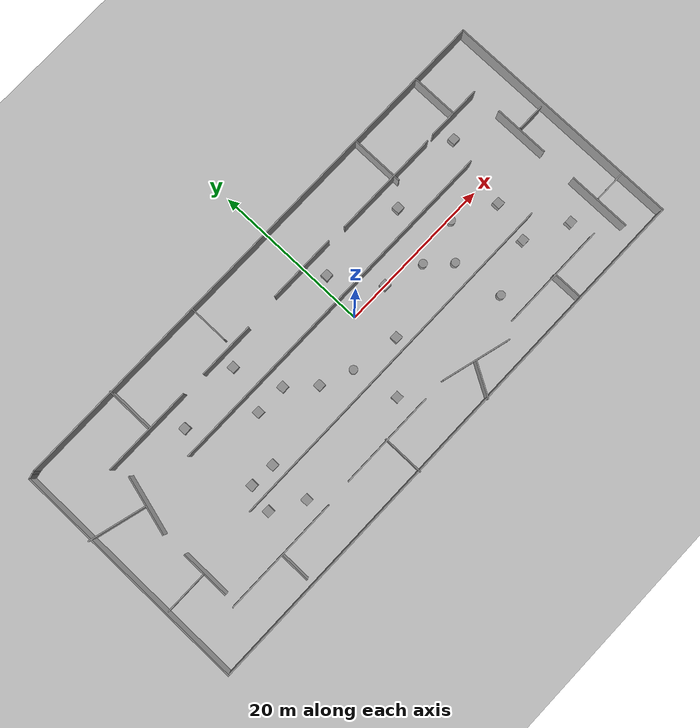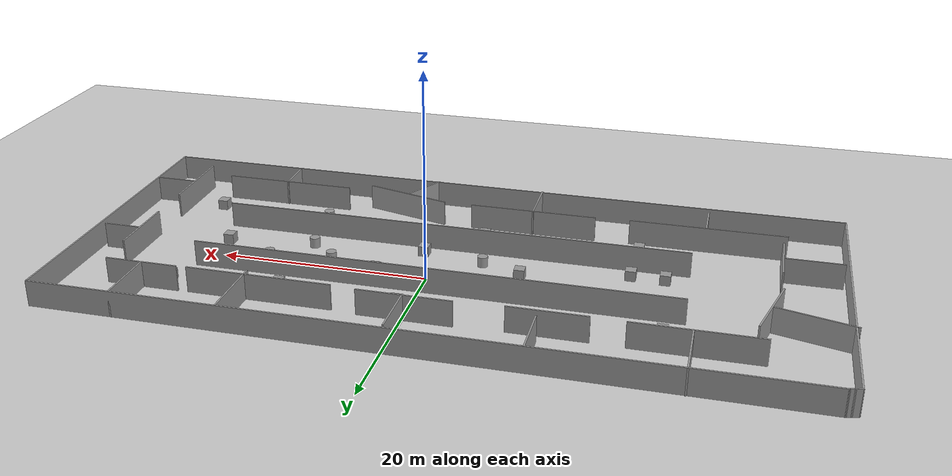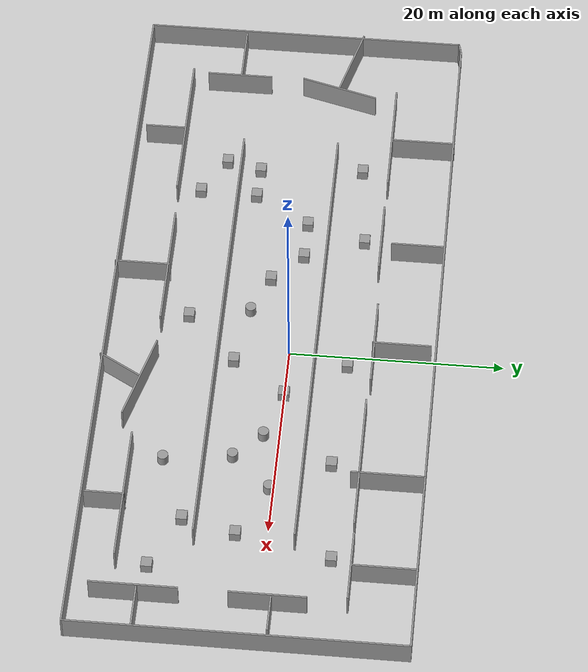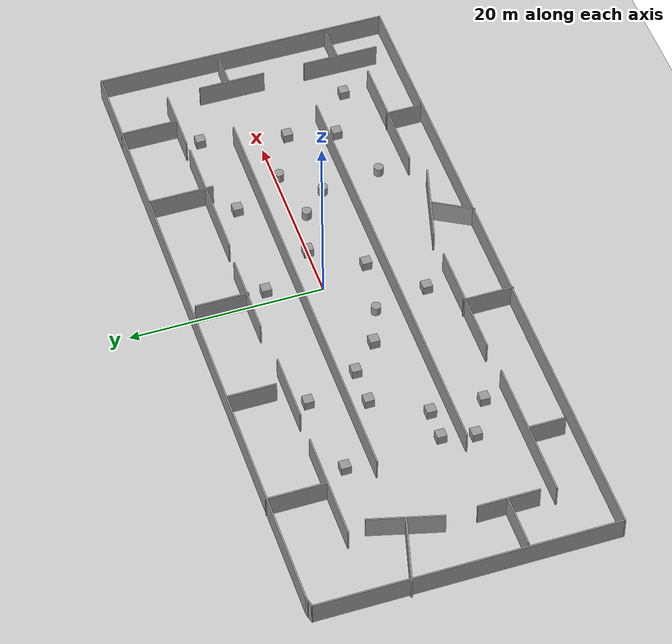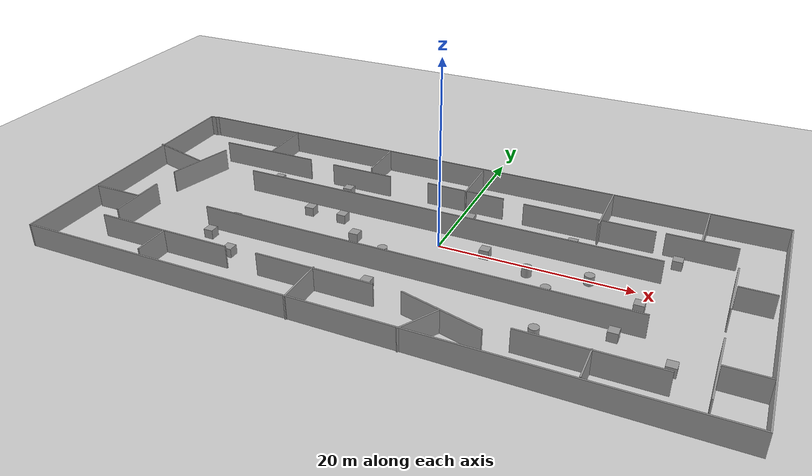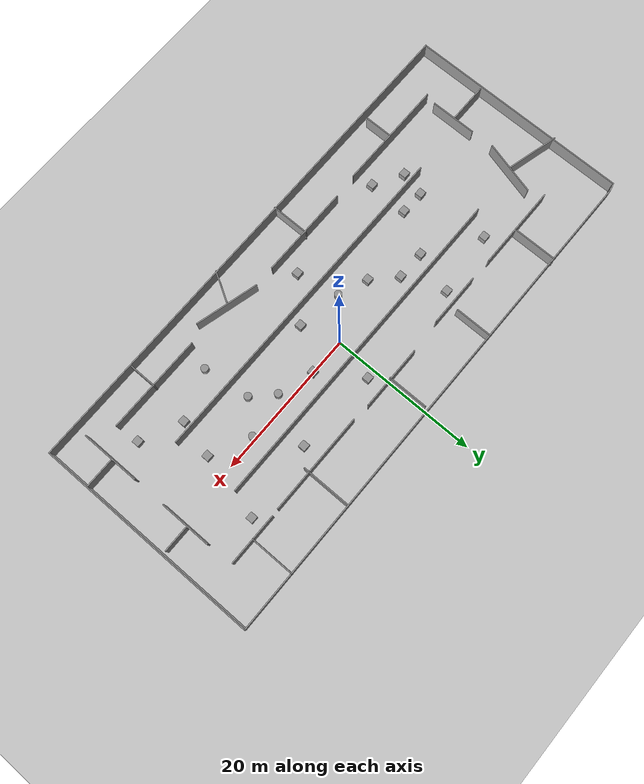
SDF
<sdf version="1.6">
 <world name="default">
  <light name="sun" type="directional">
   <pose>0 0 10 0 -0 0</pose>
   <diffuse>0.8 0.8 0.8 1</diffuse>
   <specular>0.2 0.2 0.2 1</specular>
   <attenuation>
    <range>1000</range>
    <constant>0.9</constant>
    <linear>0.01</linear>
    <quadratic>0.001</quadratic>
   </attenuation>
   <direction>-0.5 0.1 -0.9</direction>
  </light>
  <model name="ground_plane">
   <static>1</static>
   <link name="link">
    <collision name="collision">
     <geometry><plane><normal>0 0 1</normal><size>100 100</size></plane></geometry>
     <surface>
      <contact><collide_bitmask>65535</collide_bitmask></contact>
      <friction><ode><mu>100</mu><mu2>50</mu2></ode></friction>
     </surface>
    </collision>
    <visual name="visual">
     <cast_shadows>0</cast_shadows>
     <geometry><plane><normal>0 0 1</normal><size>100 100</size></plane></geometry>
     <material>
      <script><uri>file://media/materials/scripts/gazebo.material</uri><name>Gazebo/Grey</name></script>
     </material>
    </visual>
   </link>
  </model>
  <gravity>0 0 -9.8</gravity>
  <magnetic_field>6e-06 2.3e-05 -4.2e-05</magnetic_field>
  <atmosphere type="adiabatic"/>
  <physics name="default_physics" default="0" type="ode">
   <max_step_size>0.001</max_step_size>
   <real_time_factor>1</real_time_factor>
   <real_time_update_rate>1000</real_time_update_rate>
  </physics>
  <scene><ambient>0.4 0.4 0.4 1</ambient><background>0.7 0.7 0.7 1</background><shadows>1</shadows></scene>
  <audio><device>default</device></audio>
  <spherical_coordinates>
   <surface_model>EARTH_WGS84</surface_model>
   <latitude_deg>0</latitude_deg>
   <longitude_deg>0</longitude_deg>
   <elevation>0</elevation>
   <heading_deg>0</heading_deg>
  </spherical_coordinates>
  <model name="4">
   <pose>-2.66349 -1.69642 0 0 -0 0</pose>
   <link name="Wall_0">
    <collision name="Wall_0_Collision">
     <geometry><box><size>69.25 0.15 2.5</size></box></geometry>
     <pose>0 0 1.25 0 -0 0</pose>
    </collision>
    <visual name="Wall_0_Visual">
     <pose>0 0 1.25 0 -0 0</pose>
     <geometry><box><size>69.25 0.15 2.5</size></box></geometry>
     <material>
      <script><uri>file://media/materials/scripts/gazebo.material</uri><name>Gazebo/Grey</name></script>
      <ambient>1 1 1 1</ambient>
     </material>
     <meta><layer>0</layer></meta>
    </visual>
    <pose>0.64256 15.3412 0 0 -0 0</pose>
   </link>
   <link name="Wall_1">
    <collision name="Wall_1_Collision">
     <geometry><box><size>30.75 0.15 2.5</size></box></geometry>
     <pose>0 0 1.25 0 -0 0</pose>
    </collision>
    <visual name="Wall_1_Visual">
     <pose>0 0 1.25 0 -0 0</pose>
     <geometry><box><size>30.75 0.15 2.5</size></box></geometry>
     <material>
      <script><uri>file://media/materials/scripts/gazebo.material</uri><name>Gazebo/Grey</name></script>
      <ambient>1 1 1 1</ambient>
     </material>
     <meta><layer>0</layer></meta>
    </visual>
    <pose>35.1926 0.041171 0 0 -0 -1.5708</pose>
   </link>
   <link name="Wall_11">
    <collision name="Wall_11_Collision">
     <geometry><box><size>8.75 0.15 2.5</size></box></geometry>
     <pose>0 0 1.25 0 -0 0</pose>
    </collision>
    <visual name="Wall_11_Visual">
     <pose>0 0 1.25 0 -0 0</pose>
     <geometry><box><size>8.75 0.15 2.5</size></box></geometry>
     <material>
      <script><uri>file://media/materials/scripts/gazebo.material</uri><name>Gazebo/Grey</name></script>
      <ambient>1 1 1 1</ambient>
     </material>
     <meta><layer>0</layer></meta>
    </visual>
    <pose>2.40711 9.60985 0 0 -0 3.14159</pose>
   </link>
   <link name="Wall_13">
    <collision name="Wall_13_Collision">
     <geometry><box><size>13.75 0.15 2.5</size></box></geometry>
     <pose>0 0 1.25 0 -0 0</pose>
    </collision>
    <visual name="Wall_13_Visual">
     <pose>0 0 1.25 0 -0 0</pose>
     <geometry><box><size>13.75 0.15 2.5</size></box></geometry>
     <material>
      <script><uri>file://media/materials/scripts/gazebo.material</uri><name>Gazebo/Grey</name></script>
      <ambient>1 1 1 1</ambient>
     </material>
     <meta><layer>0</layer></meta>
    </visual>
    <pose>15.969 9.39758 0 0 -0 3.14159</pose>
   </link>
   <link name="Wall_15">
    <collision name="Wall_15_Collision">
     <geometry><box><size>7 0.15 2.5</size></box></geometry>
     <pose>0 0 1.25 0 -0 0</pose>
    </collision>
    <visual name="Wall_15_Visual">
     <pose>0 0 1.25 0 -0 0</pose>
     <geometry><box><size>7 0.15 2.5</size></box></geometry>
     <material>
      <script><uri>file://media/materials/scripts/gazebo.material</uri><name>Gazebo/Grey</name></script>
      <ambient>1 1 1 1</ambient>
     </material>
     <meta><layer>0</layer></meta>
    </visual>
    <pose>27.2553 9.46834 0 0 -0 0</pose>
   </link>
   <link name="Wall_17">
    <collision name="Wall_17_Collision">
     <geometry><box><size>7 0.15 2.5</size></box></geometry>
     <pose>0 0 1.25 0 -0 0</pose>
    </collision>
    <visual name="Wall_17_Visual">
     <pose>0 0 1.25 0 -0 0</pose>
     <geometry><box><size>7 0.15 2.5</size></box></geometry>
     <material>
      <script><uri>file://media/materials/scripts/gazebo.material</uri><name>Gazebo/Grey</name></script>
      <ambient>1 1 1 1</ambient>
     </material>
     <meta><layer>0</layer></meta>
    </visual>
    <pose>30.9768 2.42129 0 0 -0 1.5708</pose>
   </link>
   <link name="Wall_19">
    <collision name="Wall_19_Collision">
     <geometry><box><size>8 0.15 2.5</size></box></geometry>
     <pose>0 0 1.25 0 -0 0</pose>
    </collision>
    <visual name="Wall_19_Visual">
     <pose>0 0 1.25 0 -0 0</pose>
     <geometry><box><size>8 0.15 2.5</size></box></geometry>
     <material>
      <script><uri>file://media/materials/scripts/gazebo.material</uri><name>Gazebo/Grey</name></script>
      <ambient>1 1 1 1</ambient>
     </material>
     <meta><layer>0</layer></meta>
    </visual>
    <pose>30.9768 -9.46119 0 0 -0 1.5708</pose>
   </link>
   <link name="Wall_2">
    <collision name="Wall_2_Collision">
     <geometry><box><size>70.25 0.15 2.5</size></box></geometry>
     <pose>0 0 1.25 0 -0 0</pose>
    </collision>
    <visual name="Wall_2_Visual">
     <pose>0 0 1.25 0 -0 0</pose>
     <geometry><box><size>70.25 0.15 2.5</size></box></geometry>
     <material>
      <script><uri>file://media/materials/scripts/gazebo.material</uri><name>Gazebo/Grey</name></script>
      <ambient>1 1 1 1</ambient>
     </material>
     <meta><layer>0</layer></meta>
    </visual>
    <pose>0.14256 -15.2588 0 0 -0 3.14159</pose>
   </link>
   <link name="Wall_21">
    <collision name="Wall_21_Collision">
     <geometry><box><size>13.25 0.15 2.5</size></box></geometry>
     <pose>0 0 1.25 0 -0 0</pose>
    </collision>
    <visual name="Wall_21_Visual">
     <pose>0 0 1.25 0 -0 0</pose>
     <geometry><box><size>13.25 0.15 2.5</size></box></geometry>
     <material>
      <script><uri>file://media/materials/scripts/gazebo.material</uri><name>Gazebo/Grey</name></script>
      <ambient>1 1 1 1</ambient>
     </material>
     <meta><layer>0</layer></meta>
    </visual>
    <pose>21.2527 -11.4758 0 0 -0 0</pose>
   </link>
   <link name="Wall_23">
    <collision name="Wall_23_Collision">
     <geometry><box><size>15 0.15 2.5</size></box></geometry>
     <pose>0 0 1.25 0 -0 0</pose>
    </collision>
    <visual name="Wall_23_Visual">
     <pose>0 0 1.25 0 -0 0</pose>
     <geometry><box><size>15 0.15 2.5</size></box></geometry>
     <material>
      <script><uri>file://media/materials/scripts/gazebo.material</uri><name>Gazebo/Grey</name></script>
      <ambient>1 1 1 1</ambient>
     </material>
     <meta><layer>0</layer></meta>
    </visual>
    <pose>-22.0247 -10.6267 0 0 -0 0</pose>
   </link>
   <link name="Wall_25">
    <collision name="Wall_25_Collision">
     <geometry><box><size>12.5 0.15 2.5</size></box></geometry>
     <pose>0 0 1.25 0 -0 0</pose>
    </collision>
    <visual name="Wall_25_Visual">
     <pose>0 0 1.25 0 -0 0</pose>
     <geometry><box><size>12.5 0.15 2.5</size></box></geometry>
     <material>
      <script><uri>file://media/materials/scripts/gazebo.material</uri><name>Gazebo/Grey</name></script>
      <ambient>1 1 1 1</ambient>
     </material>
     <meta><layer>0</layer></meta>
    </visual>
    <pose>-4.94867 -10.4144 0 0 -0 0</pose>
   </link>
   <link name="Wall_27">
    <collision name="Wall_27_Collision">
     <geometry><box><size>8.75 0.15 2.5</size></box></geometry>
     <pose>0 0 1.25 0 -0 0</pose>
    </collision>
    <visual name="Wall_27_Visual">
     <pose>0 0 1.25 0 -0 0</pose>
     <geometry><box><size>8.75 0.15 2.5</size></box></geometry>
     <material>
      <script><uri>file://media/materials/scripts/gazebo.material</uri><name>Gazebo/Grey</name></script>
      <ambient>1 1 1 1</ambient>
     </material>
     <meta><layer>0</layer></meta>
    </visual>
    <pose>8.31334 -11.5273 0 0 -0 -0.261799</pose>
   </link>
   <link name="Wall_29">
    <collision name="Wall_29_Collision">
     <geometry><box><size>7.5 0.15 2.5</size></box></geometry>
     <pose>0 0 1.25 0 -0 0</pose>
    </collision>
    <visual name="Wall_29_Visual">
     <pose>0 0 1.25 0 -0 0</pose>
     <geometry><box><size>7.5 0.15 2.5</size></box></geometry>
     <material>
      <script><uri>file://media/materials/scripts/gazebo.material</uri><name>Gazebo/Grey</name></script>
      <ambient>1 1 1 1</ambient>
     </material>
     <meta><layer>0</layer></meta>
    </visual>
    <pose>-28.2156 3.81969 0 0 -0 1.309</pose>
   </link>
   <link name="Wall_3">
    <collision name="Wall_3_Collision">
     <geometry><box><size>30.5 0.15 2.5</size></box></geometry>
     <pose>0 0 1.25 0 -0 0</pose>
    </collision>
    <visual name="Wall_3_Visual">
     <pose>0 0 1.25 0 -0 0</pose>
     <geometry><box><size>30.5 0.15 2.5</size></box></geometry>
     <material>
      <script><uri>file://media/materials/scripts/gazebo.material</uri><name>Gazebo/Grey</name></script>
      <ambient>1 1 1 1</ambient>
     </material>
     <meta><layer>0</layer></meta>
    </visual>
    <pose>-34.9074 -0.083829 0 0 -0 1.5708</pose>
   </link>
   <link name="Wall_31">
    <collision name="Wall_31_Collision">
     <geometry><box><size>6.25 0.15 2.5</size></box></geometry>
     <pose>0 0 1.25 0 -0 0</pose>
    </collision>
    <visual name="Wall_31_Visual">
     <pose>0 0 1.25 0 -0 0</pose>
     <geometry><box><size>6.25 0.15 2.5</size></box></geometry>
     <material>
      <script><uri>file://media/materials/scripts/gazebo.material</uri><name>Gazebo/Grey</name></script>
      <ambient>1 1 1 1</ambient>
     </material>
     <meta><layer>0</layer></meta>
    </visual>
    <pose>-29.096 -6.02001 0 0 -0 1.5708</pose>
   </link>
   <link name="Wall_33">
    <collision name="Wall_33_Collision">
     <geometry><box><size>6 0.15 2.5</size></box></geometry>
     <pose>0 0 1.25 0 -0 0</pose>
    </collision>
    <visual name="Wall_33_Visual">
     <pose>0 0 1.25 0 -0 0</pose>
     <geometry><box><size>6 0.15 2.5</size></box></geometry>
     <material>
      <script><uri>file://media/materials/scripts/gazebo.material</uri><name>Gazebo/Grey</name></script>
      <ambient>1 1 1 1</ambient>
     </material>
     <meta><layer>0</layer></meta>
    </visual>
    <pose>-22.091 12.4869 0 0 -0 -1.5708</pose>
   </link>
   <link name="Wall_35">
    <collision name="Wall_35_Collision">
     <geometry><box><size>5 0.15 2.5</size></box></geometry>
     <pose>0 0 1.25 0 -0 0</pose>
    </collision>
    <visual name="Wall_35_Visual">
     <pose>0 0 1.25 0 -0 0</pose>
     <geometry><box><size>5 0.15 2.5</size></box></geometry>
     <material>
      <script><uri>file://media/materials/scripts/gazebo.material</uri><name>Gazebo/Grey</name></script>
      <ambient>1 1 1 1</ambient>
     </material>
     <meta><layer>0</layer></meta>
    </visual>
    <pose>-9.28398 12.8132 0 0 -0 1.5708</pose>
   </link>
   <link name="Wall_37">
    <collision name="Wall_37_Collision">
     <geometry><box><size>5.5 0.15 2.5</size></box></geometry>
     <pose>0 0 1.25 0 -0 0</pose>
    </collision>
    <visual name="Wall_37_Visual">
     <pose>0 0 1.25 0 -0 0</pose>
     <geometry><box><size>5.5 0.15 2.5</size></box></geometry>
     <material>
      <script><uri>file://media/materials/scripts/gazebo.material</uri><name>Gazebo/Grey</name></script>
      <ambient>1 1 1 1</ambient>
     </material>
     <meta><layer>0</layer></meta>
    </visual>
    <pose>2.53245 12.1709 0 0 -0 -1.5708</pose>
   </link>
   <link name="Wall_39">
    <collision name="Wall_39_Collision">
     <geometry><box><size>6.75 0.15 2.5</size></box></geometry>
     <pose>0 0 1.25 0 -0 0</pose>
    </collision>
    <visual name="Wall_39_Visual">
     <pose>0 0 1.25 0 -0 0</pose>
     <geometry><box><size>6.75 0.15 2.5</size></box></geometry>
     <material>
      <script><uri>file://media/materials/scripts/gazebo.material</uri><name>Gazebo/Grey</name></script>
      <ambient>1 1 1 1</ambient>
     </material>
     <meta><layer>0</layer></meta>
    </visual>
    <pose>17.2499 11.99 0 0 -0 1.5708</pose>
   </link>
   <link name="Wall_4">
    <collision name="Wall_4_Collision">
     <geometry><box><size>0.75 0.15 2.5</size></box></geometry>
     <pose>0 0 1.25 0 -0 0</pose>
    </collision>
    <visual name="Wall_4_Visual">
     <pose>0 0 1.25 0 -0 0</pose>
     <geometry><box><size>0.75 0.15 2.5</size></box></geometry>
     <material>
      <script><uri>file://media/materials/scripts/gazebo.material</uri><name>Gazebo/Grey</name></script>
      <ambient>1 1 1 1</ambient>
     </material>
     <meta><layer>0</layer></meta>
    </visual>
    <pose>-34.6177 15.1688 0 0 -0 0.261799</pose>
   </link>
   <link name="Wall_41">
    <collision name="Wall_41_Collision">
     <geometry><box><size>6 0.15 2.5</size></box></geometry>
     <pose>0 0 1.25 0 -0 0</pose>
    </collision>
    <visual name="Wall_41_Visual">
     <pose>0 0 1.25 0 -0 0</pose>
     <geometry><box><size>6 0.15 2.5</size></box></geometry>
     <material>
      <script><uri>file://media/materials/scripts/gazebo.material</uri><name>Gazebo/Grey</name></script>
      <ambient>1 1 1 1</ambient>
     </material>
     <meta><layer>0</layer></meta>
    </visual>
    <pose>27.2267 12.4162 0 0 -0 -1.5708</pose>
   </link>
   <link name="Wall_43">
    <collision name="Wall_43_Collision">
     <geometry><box><size>3.5 0.15 2.5</size></box></geometry>
     <pose>0 0 1.25 0 -0 0</pose>
    </collision>
    <visual name="Wall_43_Visual">
     <pose>0 0 1.25 0 -0 0</pose>
     <geometry><box><size>3.5 0.15 2.5</size></box></geometry>
     <material>
      <script><uri>file://media/materials/scripts/gazebo.material</uri><name>Gazebo/Grey</name></script>
      <ambient>1 1 1 1</ambient>
     </material>
     <meta><layer>0</layer></meta>
    </visual>
    <pose>32.9104 2.74641 0 0 -0 3.14159</pose>
   </link>
   <link name="Wall_45">
    <collision name="Wall_45_Collision">
     <geometry><box><size>4 0.15 2.5</size></box></geometry>
     <pose>0 0 1.25 0 -0 0</pose>
    </collision>
    <visual name="Wall_45_Visual">
     <pose>0 0 1.25 0 -0 0</pose>
     <geometry><box><size>4 0.15 2.5</size></box></geometry>
     <material>
      <script><uri>file://media/materials/scripts/gazebo.material</uri><name>Gazebo/Grey</name></script>
      <ambient>1 1 1 1</ambient>
     </material>
     <meta><layer>0</layer></meta>
    </visual>
    <pose>33.1141 -9.14077 0 0 -0 0</pose>
   </link>
   <link name="Wall_47">
    <collision name="Wall_47_Collision">
     <geometry><box><size>3.75 0.15 2.5</size></box></geometry>
     <pose>0 0 1.25 0 -0 0</pose>
    </collision>
    <visual name="Wall_47_Visual">
     <pose>0 0 1.25 0 -0 0</pose>
     <geometry><box><size>3.75 0.15 2.5</size></box></geometry>
     <material>
      <script><uri>file://media/materials/scripts/gazebo.material</uri><name>Gazebo/Grey</name></script>
      <ambient>1 1 1 1</ambient>
     </material>
     <meta><layer>0</layer></meta>
    </visual>
    <pose>21.4246 -13.205 0 0 -0 -1.5708</pose>
   </link>
   <link name="Wall_49">
    <collision name="Wall_49_Collision">
     <geometry><box><size>4.5 0.15 2.5</size></box></geometry>
     <pose>0 0 1.25 0 -0 0</pose>
    </collision>
    <visual name="Wall_49_Visual">
     <pose>0 0 1.25 0 -0 0</pose>
     <geometry><box><size>4.5 0.15 2.5</size></box></geometry>
     <material>
      <script><uri>file://media/materials/scripts/gazebo.material</uri><name>Gazebo/Grey</name></script>
      <ambient>1 1 1 1</ambient>
     </material>
     <meta><layer>0</layer></meta>
    </visual>
    <pose>7.10551 -13.5009 0 0 -0 -2.0944</pose>
   </link>
   <link name="Wall_5">
    <collision name="Wall_5_Collision">
     <geometry><box><size>0.580979 0.15 2.5</size></box></geometry>
     <pose>0 0 1.25 0 -0 0</pose>
    </collision>
    <visual name="Wall_5_Visual">
     <pose>0 0 1.25 0 -0 0</pose>
     <geometry><box><size>0.580979 0.15 2.5</size></box></geometry>
     <material>
      <script><uri>file://media/materials/scripts/gazebo.material</uri><name>Gazebo/Grey</name></script>
      <ambient>1 1 1 1</ambient>
     </material>
     <meta><layer>0</layer></meta>
    </visual>
    <pose>-34.1177 15.2938 0 0 -0 0.22156</pose>
   </link>
   <link name="Wall_51">
    <collision name="Wall_51_Collision">
     <geometry><box><size>5.25 0.15 2.5</size></box></geometry>
     <pose>0 0 1.25 0 -0 0</pose>
    </collision>
    <visual name="Wall_51_Visual">
     <pose>0 0 1.25 0 -0 0</pose>
     <geometry><box><size>5.25 0.15 2.5</size></box></geometry>
     <material>
      <script><uri>file://media/materials/scripts/gazebo.material</uri><name>Gazebo/Grey</name></script>
      <ambient>1 1 1 1</ambient>
     </material>
     <meta><layer>0</layer></meta>
    </visual>
    <pose>-4.9678 -12.8229 0 0 -0 -1.5708</pose>
   </link>
   <link name="Wall_53">
    <collision name="Wall_53_Collision">
     <geometry><box><size>3.75 0.15 2.5</size></box></geometry>
     <pose>0 0 1.25 0 -0 0</pose>
    </collision>
    <visual name="Wall_53_Visual">
     <pose>0 0 1.25 0 -0 0</pose>
     <geometry><box><size>3.75 0.15 2.5</size></box></geometry>
     <material>
      <script><uri>file://media/materials/scripts/gazebo.material</uri><name>Gazebo/Grey</name></script>
      <ambient>1 1 1 1</ambient>
     </material>
     <meta><layer>0</layer></meta>
    </visual>
    <pose>-21.8787 -12.5768 0 0 -0 1.5708</pose>
   </link>
   <link name="Wall_55">
    <collision name="Wall_55_Collision">
     <geometry><box><size>5.5 0.15 2.5</size></box></geometry>
     <pose>0 0 1.25 0 -0 0</pose>
    </collision>
    <visual name="Wall_55_Visual">
     <pose>0 0 1.25 0 -0 0</pose>
     <geometry><box><size>5.5 0.15 2.5</size></box></geometry>
     <material>
      <script><uri>file://media/materials/scripts/gazebo.material</uri><name>Gazebo/Grey</name></script>
      <ambient>1 1 1 1</ambient>
     </material>
     <meta><layer>0</layer></meta>
    </visual>
    <pose>-31.8417 -5.88595 0 0 -0 3.14159</pose>
   </link>
   <link name="Wall_57">
    <collision name="Wall_57_Collision">
     <geometry><box><size>7.25 0.15 2.5</size></box></geometry>
     <pose>0 0 1.25 0 -0 0</pose>
    </collision>
    <visual name="Wall_57_Visual">
     <pose>0 0 1.25 0 -0 0</pose>
     <geometry><box><size>7.25 0.15 2.5</size></box></geometry>
     <material>
      <script><uri>file://media/materials/scripts/gazebo.material</uri><name>Gazebo/Grey</name></script>
      <ambient>1 1 1 1</ambient>
     </material>
     <meta><layer>0</layer></meta>
    </visual>
    <pose>-31.7467 4.72658 0 0 -0 2.87979</pose>
   </link>
   <link name="Wall_59">
    <collision name="Wall_59_Collision">
     <geometry><box><size>45.75 0.15 2.5</size></box></geometry>
     <pose>0 0 1.25 0 -0 0</pose>
    </collision>
    <visual name="Wall_59_Visual">
     <pose>0 0 1.25 0 -0 0</pose>
     <geometry><box><size>45.75 0.15 2.5</size></box></geometry>
     <material>
      <script><uri>file://media/materials/scripts/gazebo.material</uri><name>Gazebo/Grey</name></script>
      <ambient>1 1 1 1</ambient>
     </material>
     <meta><layer>0</layer></meta>
    </visual>
    <pose>1.91186 -4.82459 0 0 -0 0</pose>
   </link>
   <link name="Wall_61">
    <collision name="Wall_61_Collision">
     <geometry><box><size>45.75 0.15 2.5</size></box></geometry>
     <pose>0 0 1.25 0 -0 0</pose>
    </collision>
    <visual name="Wall_61_Visual">
     <pose>0 0 1.25 0 -0 0</pose>
     <geometry><box><size>45.75 0.15 2.5</size></box></geometry>
     <material>
      <script><uri>file://media/materials/scripts/gazebo.material</uri><name>Gazebo/Grey</name></script>
      <ambient>1 1 1 1</ambient>
     </material>
     <meta><layer>0</layer></meta>
    </visual>
    <pose>1.62883 4.23231 0 0 -0 0</pose>
   </link>
   <link name="Wall_7">
    <collision name="Wall_7_Collision">
     <geometry><box><size>11.5 0.15 2.5</size></box></geometry>
     <pose>0 0 1.25 0 -0 0</pose>
    </collision>
    <visual name="Wall_7_Visual">
     <pose>0 0 1.25 0 -0 0</pose>
     <geometry><box><size>11.5 0.15 2.5</size></box></geometry>
     <material>
      <script><uri>file://media/materials/scripts/gazebo.material</uri><name>Gazebo/Grey</name></script>
      <ambient>1 1 1 1</ambient>
     </material>
     <meta><layer>0</layer></meta>
    </visual>
    <pose>-22.4304 9.39758 0 0 -0 0</pose>
   </link>
   <link name="Wall_9">
    <collision name="Wall_9_Collision">
     <geometry><box><size>7.25 0.15 2.5</size></box></geometry>
     <pose>0 0 1.25 0 -0 0</pose>
    </collision>
    <visual name="Wall_9_Visual">
     <pose>0 0 1.25 0 -0 0</pose>
     <geometry><box><size>7.25 0.15 2.5</size></box></geometry>
     <material>
      <script><uri>file://media/materials/scripts/gazebo.material</uri><name>Gazebo/Grey</name></script>
      <ambient>1 1 1 1</ambient>
     </material>
     <meta><layer>0</layer></meta>
    </visual>
    <pose>-10.0502 9.32682 0 0 -0 0</pose>
   </link>
   <static>1</static>
  </model>
  <model name="unit_box">
   <pose>-21.4835 -4.68028 0.499995 0 1e-05 0</pose>
   <link name="link">
    <inertial>
     <mass>1</mass>
     <inertia>
      <ixx>0.166667</ixx>
      <ixy>0</ixy>
      <ixz>0</ixz>
      <iyy>0.166667</iyy>
      <iyz>0</iyz>
      <izz>0.166667</izz>
     </inertia>
    </inertial>
    <collision name="collision"><geometry><box><size>1 1 1</size></box></geometry></collision>
    <visual name="visual">
     <geometry><box><size>1 1 1</size></box></geometry>
     <material>
      <script><name>Gazebo/Grey</name><uri>file://media/materials/scripts/gazebo.material</uri></script>
     </material>
    </visual>
   </link>
  </model>
  <model name="unit_box_0">
   <pose>-18.2993 -4.77743 0.499995 -1e-05 -0 -0</pose>
   <link name="link">
    <inertial>
     <mass>1</mass>
     <inertia>
      <ixx>0.166667</ixx>
      <ixy>0</ixy>
      <ixz>0</ixz>
      <iyy>0.166667</iyy>
      <iyz>0</iyz>
      <izz>0.166667</izz>
     </inertia>
    </inertial>
    <collision name="collision"><geometry><box><size>1 1 1</size></box></geometry></collision>
    <visual name="visual">
     <geometry><box><size>1 1 1</size></box></geometry>
     <material>
      <script><name>Gazebo/Grey</name><uri>file://media/materials/scripts/gazebo.material</uri></script>
     </material>
    </visual>
   </link>
  </model>
  <model name="unit_box_1">
   <pose>-15.18 0.429622 0.499995 0 1e-05 0</pose>
   <link name="link">
    <inertial>
     <mass>1</mass>
     <inertia>
      <ixx>0.166667</ixx>
      <ixy>0</ixy>
      <ixz>0</ixz>
      <iyy>0.166667</iyy>
      <iyz>0</iyz>
      <izz>0.166667</izz>
     </inertia>
    </inertial>
    <collision name="collision"><geometry><box><size>1 1 1</size></box></geometry></collision>
    <visual name="visual">
     <geometry><box><size>1 1 1</size></box></geometry>
     <material>
      <script><name>Gazebo/Grey</name><uri>file://media/materials/scripts/gazebo.material</uri></script>
     </material>
    </visual>
   </link>
  </model>
  <model name="unit_box_2">
   <pose>-11.2938 0.407915 0.499995 -1e-05 -0 -0</pose>
   <link name="link">
    <inertial>
     <mass>1</mass>
     <inertia>
      <ixx>0.166667</ixx>
      <ixy>0</ixy>
      <ixz>0</ixz>
      <iyy>0.166667</iyy>
      <iyz>0</iyz>
      <izz>0.166667</izz>
     </inertia>
    </inertial>
    <collision name="collision"><geometry><box><size>1 1 1</size></box></geometry></collision>
    <visual name="visual">
     <geometry><box><size>1 1 1</size></box></geometry>
     <material>
      <script><name>Gazebo/Grey</name><uri>file://media/materials/scripts/gazebo.material</uri></script>
     </material>
    </visual>
   </link>
  </model>
  <model name="unit_box_3">
   <pose>-8.31681 -2.4474 0.499995 0 1e-05 0</pose>
   <link name="link">
    <inertial>
     <mass>1</mass>
     <inertia>
      <ixx>0.166667</ixx>
      <ixy>0</ixy>
      <ixz>0</ixz>
      <iyy>0.166667</iyy>
      <iyz>0</iyz>
      <izz>0.166667</izz>
     </inertia>
    </inertial>
    <collision name="collision"><geometry><box><size>1 1 1</size></box></geometry></collision>
    <visual name="visual">
     <geometry><box><size>1 1 1</size></box></geometry>
     <material>
      <script><name>Gazebo/Grey</name><uri>file://media/materials/scripts/gazebo.material</uri></script>
     </material>
    </visual>
   </link>
  </model>
  <model name="unit_box_4">
   <pose>1.53918 -4.98522 0.499995 -1e-05 -0 -0</pose>
   <link name="link">
    <inertial>
     <mass>1</mass>
     <inertia>
      <ixx>0.166667</ixx>
      <ixy>0</ixy>
      <ixz>0</ixz>
      <iyy>0.166667</iyy>
      <iyz>0</iyz>
      <izz>0.166667</izz>
     </inertia>
    </inertial>
    <collision name="collision"><geometry><box><size>1 1 1</size></box></geometry></collision>
    <visual name="visual">
     <geometry><box><size>1 1 1</size></box></geometry>
     <material>
      <script><name>Gazebo/Grey</name><uri>file://media/materials/scripts/gazebo.material</uri></script>
     </material>
    </visual>
   </link>
  </model>
  <model name="unit_box_5">
   <pose>5.00429 -0.008071 0.499995 0 1e-05 0</pose>
   <link name="link">
    <inertial>
     <mass>1</mass>
     <inertia>
      <ixx>0.166667</ixx>
      <ixy>0</ixy>
      <ixz>0</ixz>
      <iyy>0.166667</iyy>
      <iyz>0</iyz>
      <izz>0.166667</izz>
     </inertia>
    </inertial>
    <collision name="collision"><geometry><box><size>1 1 1</size></box></geometry></collision>
    <visual name="visual">
     <geometry><box><size>1 1 1</size></box></geometry>
     <material>
      <script><name>Gazebo/Grey</name><uri>file://media/materials/scripts/gazebo.material</uri></script>
     </material>
    </visual>
   </link>
  </model>
  <model name="unit_cylinder">
   <pose>-4.43659 -4.00128 0.499998 3e-06 -2e-06 0</pose>
   <link name="link">
    <inertial>
     <mass>1</mass>
     <inertia><ixx>0.145833</ixx><ixy>0</ixy><ixz>0</ixz><iyy>0.145833</iyy><iyz>0</iyz><izz>0.125</izz></inertia>
    </inertial>
    <collision name="collision">
     <geometry><cylinder><radius>0.5</radius><length>1</length></cylinder></geometry>
    </collision>
    <visual name="visual">
     <geometry><cylinder><radius>0.5</radius><length>1</length></cylinder></geometry>
     <material>
      <script><name>Gazebo/Grey</name><uri>file://media/materials/scripts/gazebo.material</uri></script>
     </material>
    </visual>
   </link>
  </model>
  <model name="unit_cylinder_0">
   <pose>12.3678 -4.00717 0.499993 -3e-06 3e-06 0</pose>
   <link name="link">
    <inertial>
     <mass>1</mass>
     <inertia><ixx>0.145833</ixx><ixy>0</ixy><ixz>0</ixz><iyy>0.145833</iyy><iyz>0</iyz><izz>0.125</izz></inertia>
    </inertial>
    <collision name="collision">
     <geometry><cylinder><radius>0.5</radius><length>1</length></cylinder></geometry>
    </collision>
    <visual name="visual">
     <geometry><cylinder><radius>0.5</radius><length>1</length></cylinder></geometry>
     <material>
      <script><name>Gazebo/Grey</name><uri>file://media/materials/scripts/gazebo.material</uri></script>
     </material>
    </visual>
   </link>
  </model>
  <model name="unit_cylinder_1">
   <pose>15.6107 -0.373742 0.499998 3e-06 -3e-06 0</pose>
   <link name="link">
    <inertial>
     <mass>1</mass>
     <inertia><ixx>0.145833</ixx><ixy>0</ixy><ixz>0</ixz><iyy>0.145833</iyy><iyz>0</iyz><izz>0.125</izz></inertia>
    </inertial>
    <collision name="collision">
     <geometry><cylinder><radius>0.5</radius><length>1</length></cylinder></geometry>
    </collision>
    <visual name="visual">
     <geometry><cylinder><radius>0.5</radius><length>1</length></cylinder></geometry>
     <material>
      <script><name>Gazebo/Grey</name><uri>file://media/materials/scripts/gazebo.material</uri></script>
     </material>
    </visual>
   </link>
  </model>
  <model name="unit_cylinder_2">
   <pose>9.75713 -1.43298 0.499992 -3e-06 3e-06 0</pose>
   <link name="link">
    <inertial>
     <mass>1</mass>
     <inertia><ixx>0.145833</ixx><ixy>0</ixy><ixz>0</ixz><iyy>0.145833</iyy><iyz>0</iyz><izz>0.125</izz></inertia>
    </inertial>
    <collision name="collision">
     <geometry><cylinder><radius>0.5</radius><length>1</length></cylinder></geometry>
    </collision>
    <visual name="visual">
     <geometry><cylinder><radius>0.5</radius><length>1</length></cylinder></geometry>
     <material>
      <script><name>Gazebo/Grey</name><uri>file://media/materials/scripts/gazebo.material</uri></script>
     </material>
    </visual>
   </link>
  </model>
  <model name="unit_box_6">
   <pose>20.8034 -2.90164 0.499995 -1e-05 -0 -0</pose>
   <link name="link">
    <inertial>
     <mass>1</mass>
     <inertia>
      <ixx>0.166667</ixx>
      <ixy>0</ixy>
      <ixz>0</ixz>
      <iyy>0.166667</iyy>
      <iyz>0</iyz>
      <izz>0.166667</izz>
     </inertia>
    </inertial>
    <collision name="collision"><geometry><box><size>1 1 1</size></box></geometry></collision>
    <visual name="visual">
     <geometry><box><size>1 1 1</size></box></geometry>
     <material>
      <script><name>Gazebo/Grey</name><uri>file://media/materials/scripts/gazebo.material</uri></script>
     </material>
    </visual>
   </link>
  </model>
  <model name="unit_cylinder_3">
   <pose>13.1805 -10.2848 0.499992 -3e-06 3e-06 0</pose>
   <link name="link">
    <inertial>
     <mass>1</mass>
     <inertia><ixx>0.145833</ixx><ixy>0</ixy><ixz>0</ixz><iyy>0.145833</iyy><iyz>0</iyz><izz>0.125</izz></inertia>
    </inertial>
    <collision name="collision">
     <geometry><cylinder><radius>0.5</radius><length>1</length></cylinder></geometry>
    </collision>
    <visual name="visual">
     <geometry><cylinder><radius>0.5</radius><length>1</length></cylinder></geometry>
     <material>
      <script><name>Gazebo/Grey</name><uri>file://media/materials/scripts/gazebo.material</uri></script>
     </material>
    </visual>
   </link>
  </model>
  <model name="unit_box_7">
   <pose>19.5594 -7.84037 0.499995 -1e-05 -0 -0</pose>
   <link name="link">
    <inertial>
     <mass>1</mass>
     <inertia>
      <ixx>0.166667</ixx>
      <ixy>0</ixy>
      <ixz>0</ixz>
      <iyy>0.166667</iyy>
      <iyz>0</iyz>
      <izz>0.166667</izz>
     </inertia>
    </inertial>
    <collision name="collision"><geometry><box><size>1 1 1</size></box></geometry></collision>
    <visual name="visual">
     <geometry><box><size>1 1 1</size></box></geometry>
     <material>
      <script><name>Gazebo/Grey</name><uri>file://media/materials/scripts/gazebo.material</uri></script>
     </material>
    </visual>
   </link>
  </model>
  <model name="unit_box_8">
   <pose>-22.2821 -7.9679 0.499995 0 1e-05 0</pose>
   <link name="link">
    <inertial>
     <mass>1</mass>
     <inertia>
      <ixx>0.166667</ixx>
      <ixy>0</ixy>
      <ixz>0</ixz>
      <iyy>0.166667</iyy>
      <iyz>0</iyz>
      <izz>0.166667</izz>
     </inertia>
    </inertial>
    <collision name="collision"><geometry><box><size>1 1 1</size></box></geometry></collision>
    <visual name="visual">
     <geometry><box><size>1 1 1</size></box></geometry>
     <material>
      <script><name>Gazebo/Grey</name><uri>file://media/materials/scripts/gazebo.material</uri></script>
     </material>
    </visual>
   </link>
  </model>
  <model name="unit_box_9">
   <pose>-18.4458 -10.1681 0.499995 -1e-05 -0 -0</pose>
   <link name="link">
    <inertial>
     <mass>1</mass>
     <inertia>
      <ixx>0.166667</ixx>
      <ixy>0</ixy>
      <ixz>0</ixz>
      <iyy>0.166667</iyy>
      <iyz>0</iyz>
      <izz>0.166667</izz>
     </inertia>
    </inertial>
    <collision name="collision"><geometry><box><size>1 1 1</size></box></geometry></collision>
    <visual name="visual">
     <geometry><box><size>1 1 1</size></box></geometry>
     <material>
      <script><name>Gazebo/Grey</name><uri>file://media/materials/scripts/gazebo.material</uri></script>
     </material>
    </visual>
   </link>
  </model>
  <model name="unit_box_10">
   <pose>-3.31029 -9.66424 0.499995 0 1e-05 0</pose>
   <link name="link">
    <inertial>
     <mass>1</mass>
     <inertia>
      <ixx>0.166667</ixx>
      <ixy>0</ixy>
      <ixz>0</ixz>
      <iyy>0.166667</iyy>
      <iyz>0</iyz>
      <izz>0.166667</izz>
     </inertia>
    </inertial>
    <collision name="collision"><geometry><box><size>1 1 1</size></box></geometry></collision>
    <visual name="visual">
     <geometry><box><size>1 1 1</size></box></geometry>
     <material>
      <script><name>Gazebo/Grey</name><uri>file://media/materials/scripts/gazebo.material</uri></script>
     </material>
    </visual>
   </link>
  </model>
  <model name="unit_box_11">
   <pose>-22.1193 5.12244 0.499995 -1e-05 -0 -0</pose>
   <link name="link">
    <inertial>
     <mass>1</mass>
     <inertia>
      <ixx>0.166667</ixx>
      <ixy>0</ixy>
      <ixz>0</ixz>
      <iyy>0.166667</iyy>
      <iyz>0</iyz>
      <izz>0.166667</izz>
     </inertia>
    </inertial>
    <collision name="collision"><geometry><box><size>1 1 1</size></box></geometry></collision>
    <visual name="visual">
     <geometry><box><size>1 1 1</size></box></geometry>
     <material>
      <script><name>Gazebo/Grey</name><uri>file://media/materials/scripts/gazebo.material</uri></script>
     </material>
    </visual>
   </link>
  </model>
  <model name="unit_box_12">
   <pose>1.28483 5.56639 0.499995 0 1e-05 0</pose>
   <link name="link">
    <inertial>
     <mass>1</mass>
     <inertia>
      <ixx>0.166667</ixx>
      <ixy>0</ixy>
      <ixz>0</ixz>
      <iyy>0.166667</iyy>
      <iyz>0</iyz>
      <izz>0.166667</izz>
     </inertia>
    </inertial>
    <collision name="collision"><geometry><box><size>1 1 1</size></box></geometry></collision>
    <visual name="visual">
     <geometry><box><size>1 1 1</size></box></geometry>
     <material>
      <script><name>Gazebo/Grey</name><uri>file://media/materials/scripts/gazebo.material</uri></script>
     </material>
    </visual>
   </link>
  </model>
  <model name="unit_box_13">
   <pose>-13.5062 5.989 0.499995 -1e-05 -0 -0</pose>
   <link name="link">
    <inertial>
     <mass>1</mass>
     <inertia>
      <ixx>0.166667</ixx>
      <ixy>0</ixy>
      <ixz>0</ixz>
      <iyy>0.166667</iyy>
      <iyz>0</iyz>
      <izz>0.166667</izz>
     </inertia>
    </inertial>
    <collision name="collision"><geometry><box><size>1 1 1</size></box></geometry></collision>
    <visual name="visual">
     <geometry><box><size>1 1 1</size></box></geometry>
     <material>
      <script><name>Gazebo/Grey</name><uri>file://media/materials/scripts/gazebo.material</uri></script>
     </material>
    </visual>
   </link>
  </model>
  <model name="unit_box_14">
   <pose>12.5314 5.04372 0.499995 0 1e-05 0</pose>
   <link name="link">
    <inertial>
     <mass>1</mass>
     <inertia>
      <ixx>0.166667</ixx>
      <ixy>0</ixy>
      <ixz>0</ixz>
      <iyy>0.166667</iyy>
      <iyz>0</iyz>
      <izz>0.166667</izz>
     </inertia>
    </inertial>
    <collision name="collision"><geometry><box><size>1 1 1</size></box></geometry></collision>
    <visual name="visual">
     <geometry><box><size>1 1 1</size></box></geometry>
     <material>
      <script><name>Gazebo/Grey</name><uri>file://media/materials/scripts/gazebo.material</uri></script>
     </material>
    </visual>
   </link>
  </model>
  <model name="unit_box_15">
   <pose>22.8071 5.88734 0.499995 -1e-05 -0 0</pose>
   <link name="link">
    <inertial>
     <mass>1</mass>
     <inertia>
      <ixx>0.166667</ixx>
      <ixy>0</ixy>
      <ixz>0</ixz>
      <iyy>0.166667</iyy>
      <iyz>0</iyz>
      <izz>0.166667</izz>
     </inertia>
    </inertial>
    <collision name="collision"><geometry><box><size>1 1 1</size></box></geometry></collision>
    <visual name="visual">
     <geometry><box><size>1 1 1</size></box></geometry>
     <material>
      <script><name>Gazebo/Grey</name><uri>file://media/materials/scripts/gazebo.material</uri></script>
     </material>
    </visual>
   </link>
  </model>
  <model name="unit_box_16">
   <pose>24.8571 -10.3839 0.5 0 -0 0</pose>
   <link name="link">
    <inertial>
     <mass>1</mass>
     <inertia>
      <ixx>0.166667</ixx>
      <ixy>0</ixy>
      <ixz>0</ixz>
      <iyy>0.166667</iyy>
      <iyz>0</iyz>
      <izz>0.166667</izz>
     </inertia>
    </inertial>
    <collision name="collision"><geometry><box><size>1 1 1</size></box></geometry></collision>
    <visual name="visual">
     <geometry><box><size>1 1 1</size></box></geometry>
     <material>
      <script><name>Gazebo/Grey</name><uri>file://media/materials/scripts/gazebo.material</uri></script>
     </material>
    </visual>
   </link>
  </model>
 </world>
</sdf>
